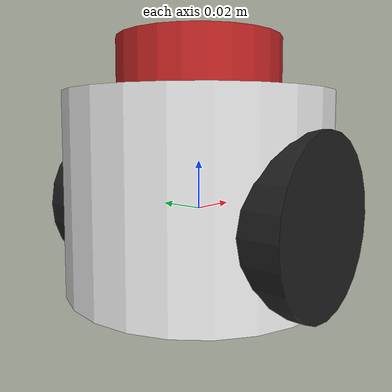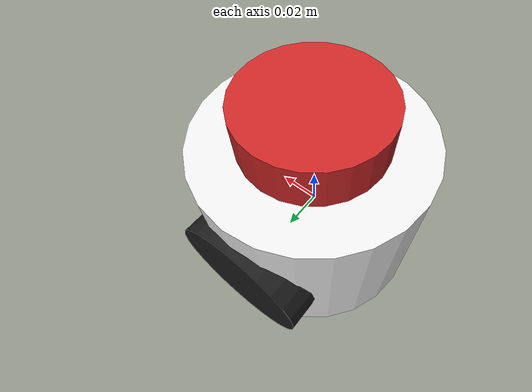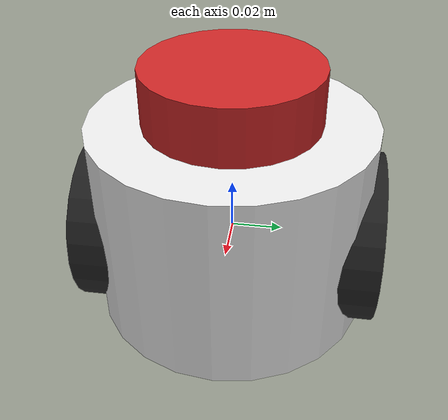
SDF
<?xml version='1.0'?>
<sdf version='1.7'>
  <model name='kris_robot2'>
    <link name='kris_robot2_base_link'>
      <pose>0 0 0 0 0 0</pose>
      <inertial>
        <mass>0.25</mass>
        <inertia>
          <ixx>0.0003223</ixx>
          <ixy>0</ixy>
          <ixz>0</ixz>
          <iyy>0.0003223</iyy>
          <iyz>0</iyz>
          <izz>0.0003781</izz>
        </inertia>
        <pose>0 0 0 0 0 0</pose>
        <origin xyz='0 0 0' rpy='0 0 0'/>
      </inertial>
      <self_collide>0</self_collide>
      <enable_wind>0</enable_wind>
      <kinematic>0</kinematic>
      <gravity>1</gravity>
      <visual name='visual'>
        <geometry>
          <cylinder>
            <length>0.08</length>
            <radius>0.055</radius>
          </cylinder>
        </geometry>
        <material>
          <script>
            <uri>file://media/materials/scripts/gazebo.material</uri>
            <name>Gazebo/White</name>
          </script>
          <shader type='pixel'>
            <normal_map>__default__</normal_map>
          </shader>
          <ambient>1 1 1 1</ambient>
          <diffuse>1 1 1 1</diffuse>
          <specular>0 0 0 1</specular>
          <emissive>0 0 0 1</emissive>
        </material>
        <pose>0 0 0.008 0 0 0</pose>
        <transparency>0</transparency>
        <cast_shadows>1</cast_shadows>
        <origin rpy='0 0 0' xyz='0 0 0'/>
      </visual>
      <collision name='collision'>
        <laser_retro>0</laser_retro>
        <max_contacts>10</max_contacts>
        <pose>0 0 0.008 0 0 0</pose>
        <geometry>
          <cylinder>
            <radius>0.055</radius>
            <length>0.08</length>
          </cylinder>
        </geometry>
        <surface>
          <friction>
            <ode>
              <mu>1</mu>
              <mu2>1</mu2>
              <fdir1>0 0 0</fdir1>
              <slip1>0</slip1>
              <slip2>0</slip2>
            </ode>
            <torsional>
              <coefficient>1</coefficient>
              <patch_radius>0</patch_radius>
              <surface_radius>0</surface_radius>
              <use_patch_radius>1</use_patch_radius>
              <ode>
                <slip>0</slip>
              </ode>
            </torsional>
          </friction>
          <bounce>
            <restitution_coefficient>0</restitution_coefficient>
            <threshold>1e+06</threshold>
          </bounce>
          <contact>
            <collide_without_contact>0</collide_without_contact>
            <collide_without_contact_bitmask>1</collide_without_contact_bitmask>
            <collide_bitmask>1</collide_bitmask>
            <ode>
              <soft_cfm>0</soft_cfm>
              <soft_erp>0.2</soft_erp>
              <kp>1e+13</kp>
              <kd>1</kd>
              <max_vel>0.01</max_vel>
              <min_depth>0</min_depth>
            </ode>
            <bullet>
              <split_impulse>1</split_impulse>
              <split_impulse_penetration_threshold>-0.01</split_impulse_penetration_threshold>
              <soft_cfm>0</soft_cfm>
              <soft_erp>0.2</soft_erp>
              <kp>1e+13</kp>
              <kd>1</kd>
            </bullet>
          </contact>
        </surface>
      </collision>
    </link>
    <link name='lidar_link'>
      <inertial>
        <mass>0.047</mass>
        <inertia>
          <ixx>2.716e-05</ixx>
          <ixy>0</ixy>
          <ixz>0</ixz>
          <iyy>1.363e-05</iyy>
          <iyz>0</iyz>
          <izz>1.363e-05</izz>
        </inertia>
        <pose>0 0 0.1 0 0 0</pose>
        <origin xyz='0 0 0' rpy='0 0 0'/>
      </inertial>
      <self_collide>0</self_collide>
      <enable_wind>0</enable_wind>
      <kinematic>0</kinematic>
      <pose>0 0 0 0 0 0</pose>
      <gravity>1</gravity>
      <visual name='visual'>
        <geometry>
          <cylinder>
            <length>0.03</length>
            <radius>0.034</radius>
          </cylinder>
        </geometry>
        <material>
          <script>
            <uri>file://media/materials/scripts/gazebo.material</uri>
            <name>Gazebo/Red</name>
          </script>
          <shader type='pixel'>
            <normal_map>__default__</normal_map>
          </shader>
          <ambient>1 0 0 1</ambient>
          <diffuse>1 0 0 1</diffuse>
          <specular>0.1 0.1 0.1 1</specular>
          <emissive>0 0 0 1</emissive>
        </material>
        <pose>0 0 0.055 0 0 0</pose>
        <transparency>0</transparency>
        <cast_shadows>1</cast_shadows>
        <origin xyz='0 0 0' rpy='0 0 0'/>
      </visual>
      <sensor name='gpu_lidar' type='gpu_lidar'>
        <pose>0 0 0.055 0 0 0</pose>
        <topic>/kris_robot2/scan</topic>
        <gz_frame_id>kris_robot2_base_link</gz_frame_id>
        <update_rate>5</update_rate>
        <enable_metrics>false</enable_metrics>
        <lidar>
          <scan>
            <horizontal>
              <samples>450</samples>
              <resolution>1</resolution>
              <min_angle>0</min_angle>
              <max_angle>6.28</max_angle>
            </horizontal>
            <vertical>
              <samples>1</samples>
              <min_angle>0</min_angle>
              <max_angle>0</max_angle>
              <resolution>1</resolution>
            </vertical>
          </scan>
          <range>
            <min>0.02</min>
            <max>12</max>
            <resolution>0.01</resolution>
          </range>
        </lidar>
      </sensor>
      <collision name='collision'>
        <laser_retro>0</laser_retro>
        <max_contacts>10</max_contacts>
        <pose>0 0 0.055 0 0 0</pose>
        <geometry>
          <cylinder>
            <radius>0.034</radius>
            <length>0.03</length>
          </cylinder>
        </geometry>
        <surface>
          <friction>
            <ode>
              <mu>1</mu>
              <mu2>1</mu2>
              <fdir1>0 0 0</fdir1>
              <slip1>0</slip1>
              <slip2>0</slip2>
            </ode>
            <torsional>
              <coefficient>1</coefficient>
              <patch_radius>0</patch_radius>
              <surface_radius>0</surface_radius>
              <use_patch_radius>1</use_patch_radius>
              <ode>
                <slip>0</slip>
              </ode>
            </torsional>
          </friction>
          <bounce>
            <restitution_coefficient>0</restitution_coefficient>
            <threshold>1e+06</threshold>
          </bounce>
          <contact>
            <collide_without_contact>0</collide_without_contact>
            <collide_without_contact_bitmask>1</collide_without_contact_bitmask>
            <collide_bitmask>1</collide_bitmask>
            <ode>
              <soft_cfm>0</soft_cfm>
              <soft_erp>0.2</soft_erp>
              <kp>1e+13</kp>
              <kd>1</kd>
              <max_vel>0.01</max_vel>
              <min_depth>0</min_depth>
            </ode>
            <bullet>
              <split_impulse>1</split_impulse>
              <split_impulse_penetration_threshold>-0.01</split_impulse_penetration_threshold>
              <soft_cfm>0</soft_cfm>
              <soft_erp>0.2</soft_erp>
              <kp>1e+13</kp>
              <kd>1</kd>
            </bullet>
          </contact>
        </surface>
      </collision>
    </link>
    <link name='lwheel'>
      <pose>0 0.045 0 -1.65698 1.57079 -0.087623</pose>
      <inertial>
        <mass>0.1</mass>
        <inertia>
          <ixx>5.281e-05</ixx>
          <ixy>0</ixy>
          <ixz>0</ixz>
          <iyy>3.161e-05</iyy>
          <iyz>0</iyz>
          <izz>3.781e-05</izz>
        </inertia>
        <pose>0 0 0 0 0 0</pose>
        <origin xyz='1.5708 1.5708 0' rpy='0 0.050 0.02'/>
      </inertial>
      <self_collide>0</self_collide>
      <enable_wind>0</enable_wind>
      <kinematic>0</kinematic>
      <gravity>1</gravity>
      <visual name='visual'>
        <geometry>
          <cylinder>
            <radius>0.0335</radius>
            <length>0.0265</length>
          </cylinder>
        </geometry>
        <material>
          <script>
            <uri>file://media/materials/scripts/gazebo.material</uri>
            <name>Gazebo/Black</name>
          </script>
          <shader type='pixel'>
            <normal_map>__default__</normal_map>
          </shader>
          <ambient>0 0 0 1</ambient>
          <diffuse>0 0 0 1</diffuse>
          <specular>0.1 0.1 0.1 1</specular>
          <emissive>0 0 0 1</emissive>
        </material>
        <pose>0 0 0 0 0 0</pose>
        <transparency>0</transparency>
        <cast_shadows>1</cast_shadows>
        <origin rpy='1.5708 1.5708 0' xyz='0 0.050 0.02'/>
      </visual>
      <collision name='collision'>
        <laser_retro>0</laser_retro>
        <max_contacts>10</max_contacts>
        <pose>0 0 0 0 0 0</pose>
        <geometry>
          <sphere>
            <radius>0.0335</radius>
          </sphere>
        </geometry>
        <surface>
          <friction>
            <ode>
              <mu>1</mu>
              <mu2>1</mu2>
              <fdir1>0 0 0</fdir1>
              <slip1>0</slip1>
              <slip2>0</slip2>
            </ode>
            <torsional>
              <coefficient>1</coefficient>
              <patch_radius>0</patch_radius>
              <surface_radius>0</surface_radius>
              <use_patch_radius>1</use_patch_radius>
              <ode>
                <slip>0</slip>
              </ode>
            </torsional>
          </friction>
          <bounce>
            <restitution_coefficient>0</restitution_coefficient>
            <threshold>1e+06</threshold>
          </bounce>
          <contact>
            <collide_without_contact>0</collide_without_contact>
            <collide_without_contact_bitmask>1</collide_without_contact_bitmask>
            <collide_bitmask>1</collide_bitmask>
            <ode>
              <soft_cfm>0</soft_cfm>
              <soft_erp>0.2</soft_erp>
              <kp>1e+13</kp>
              <kd>1</kd>
              <max_vel>0.01</max_vel>
              <min_depth>0</min_depth>
            </ode>
            <bullet>
              <split_impulse>1</split_impulse>
              <split_impulse_penetration_threshold>-0.01</split_impulse_penetration_threshold>
              <soft_cfm>0</soft_cfm>
              <soft_erp>0.2</soft_erp>
              <kp>1e+13</kp>
              <kd>1</kd>
            </bullet>
          </contact>
        </surface>
      </collision>
    </link>
    <link name='rwheel'>
      <pose>0 -0.045 0 -1.65698 1.57079 -0.087623</pose>
      <inertial>
        <mass>0.1</mass>
        <inertia>
          <ixx>5.281e-05</ixx>
          <ixy>0</ixy>
          <ixz>0</ixz>
          <iyy>3.161e-05</iyy>
          <iyz>0</iyz>
          <izz>3.781e-05</izz>
        </inertia>
        <pose>0 0 0 0 0 0</pose>
        <origin xyz='1.5708 1.5708 0' rpy='0 -0.050 0.02'/>
      </inertial>
      <self_collide>0</self_collide>
      <enable_wind>0</enable_wind>
      <kinematic>0</kinematic>
      <gravity>1</gravity>
      <visual name='visual'>
        <geometry>
          <cylinder>
            <radius>0.0335</radius>
            <length>0.0265</length>
          </cylinder>
        </geometry>
        <material>
          <script>
            <uri>file://media/materials/scripts/gazebo.material</uri>
            <name>Gazebo/Black</name>
          </script>
          <shader type='pixel'>
            <normal_map>__default__</normal_map>
          </shader>
          <ambient>0 0 0 1</ambient>
          <diffuse>0 0 0 1</diffuse>
          <specular>0.1 0.1 0.1 1</specular>
          <emissive>0 0 0 1</emissive>
        </material>
        <pose>0 0 0 0 0 0</pose>
        <transparency>0</transparency>
        <cast_shadows>1</cast_shadows>
        <origin rpy='1.5708 1.5708 0' xyz='0 -0.050 0.02'/>
      </visual>
      <collision name='collision'>
        <laser_retro>0</laser_retro>
        <max_contacts>10</max_contacts>
        <pose>0 0 0 0 0 0</pose>
        <geometry>
          <sphere>
            <radius>0.0335</radius>
          </sphere>
        </geometry>
        <surface>
          <friction>
            <ode>
              <mu>1</mu>
              <mu2>1</mu2>
              <fdir1>0 0 0</fdir1>
              <slip1>0</slip1>
              <slip2>0</slip2>
            </ode>
            <torsional>
              <coefficient>1</coefficient>
              <patch_radius>0</patch_radius>
              <surface_radius>0</surface_radius>
              <use_patch_radius>1</use_patch_radius>
              <ode>
                <slip>0</slip>
              </ode>
            </torsional>
          </friction>
          <bounce>
            <restitution_coefficient>0</restitution_coefficient>
            <threshold>1e+06</threshold>
          </bounce>
          <contact>
            <collide_without_contact>0</collide_without_contact>
            <collide_without_contact_bitmask>1</collide_without_contact_bitmask>
            <collide_bitmask>1</collide_bitmask>
            <ode>
              <soft_cfm>0</soft_cfm>
              <soft_erp>0.2</soft_erp>
              <kp>1e+13</kp>
              <kd>1</kd>
              <max_vel>0.01</max_vel>
              <min_depth>0</min_depth>
            </ode>
            <bullet>
              <split_impulse>1</split_impulse>
              <split_impulse_penetration_threshold>-0.01</split_impulse_penetration_threshold>
              <soft_cfm>0</soft_cfm>
              <soft_erp>0.2</soft_erp>
              <kp>1e+13</kp>
              <kd>1</kd>
            </bullet>
          </contact>
        </surface>
      </collision>
    </link>
    <joint name='laser_joint' type='fixed'>
      <parent>kris_robot2_base_link</parent>
      <child>lidar_link</child>
      <pose>0 0 0.05 0 0 0</pose>
    </joint>
    <joint name='left_wheel_joint' type='revolute'>
      <parent>kris_robot2_base_link</parent>
      <child>lwheel</child>
      <pose>0 0 0 0 0 0</pose>
      <axis>
        <xyz>0 0 1</xyz>
        <limit>
          <lower>-1.79769e+308</lower>
          <upper>1.79769e+308</upper>
          <effort>-1</effort>
          <velocity>-1</velocity>
        </limit>
        <dynamics>
          <spring_reference>0</spring_reference>
          <spring_stiffness>0</spring_stiffness>
          <damping>0</damping>
          <friction>0</friction>
        </dynamics>
      </axis>
      <physics>
        <ode>
          <limit>
            <cfm>0</cfm>
            <erp>0.2</erp>
          </limit>
          <suspension>
            <cfm>0</cfm>
            <erp>0.2</erp>
          </suspension>
        </ode>
      </physics>
    </joint>
    <joint name='right_wheel_joint' type='revolute'>
      <parent>kris_robot2_base_link</parent>
      <child>rwheel</child>
      <pose>0 0 0 0 0 0</pose>
      <axis>
        <xyz>0 0 1</xyz>
        <limit>
          <lower>-1.79769e+308</lower>
          <upper>1.79769e+308</upper>
          <effort>-1</effort>
          <velocity>-1</velocity>
        </limit>
        <dynamics>
          <spring_reference>0</spring_reference>
          <spring_stiffness>0</spring_stiffness>
          <damping>0</damping>
          <friction>0</friction>
        </dynamics>
      </axis>
      <physics>
        <ode>
          <limit>
            <cfm>0</cfm>
            <erp>0.2</erp>
          </limit>
          <suspension>
            <cfm>0</cfm>
            <erp>0.2</erp>
          </suspension>
        </ode>
      </physics>
    </joint>
    <static>false</static>
    <self_collide>false</self_collide>
    <plugin name='gz::sim::systems::DiffDrive' filename='ignition-gazebo-diff-drive-system'>
      <odom_publish_frequency>2</odom_publish_frequency>
      <left_joint>left_wheel_joint</left_joint>
      <right_joint>right_wheel_joint</right_joint>
      <wheel_separation>0.08</wheel_separation>
      <wheel_radius>0.0325</wheel_radius>
      <topic>/kris_robot2/cmd_vel</topic>
      <odom_topic>/kris_robot2/odom</odom_topic>
      <frame_id>kris_robot2_odom</frame_id>
      <child_frame_id>kris_robot2_base_link</child_frame_id>
      <max_linear_velocity>0.5</max_linear_velocity>
      <max_angular_velocity>0.4</max_angular_velocity>
    </plugin>
  </model>
</sdf>
